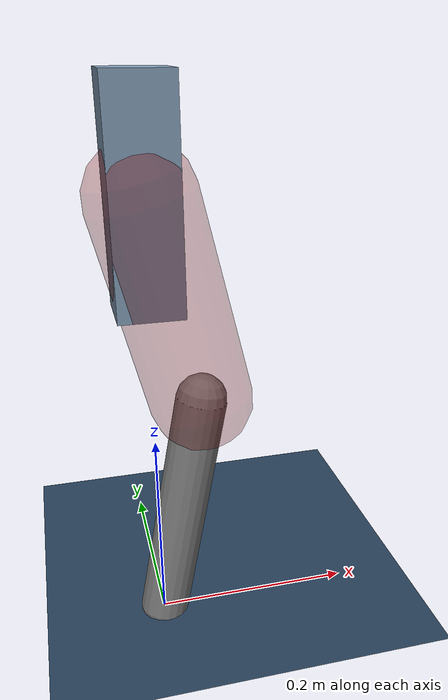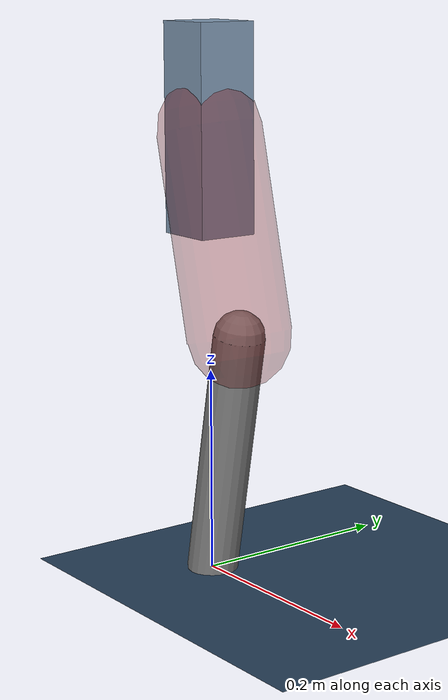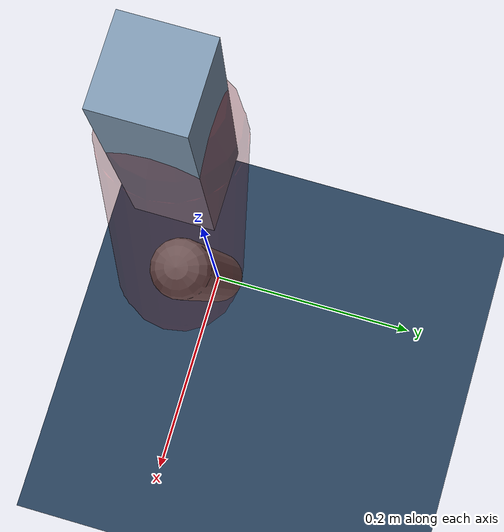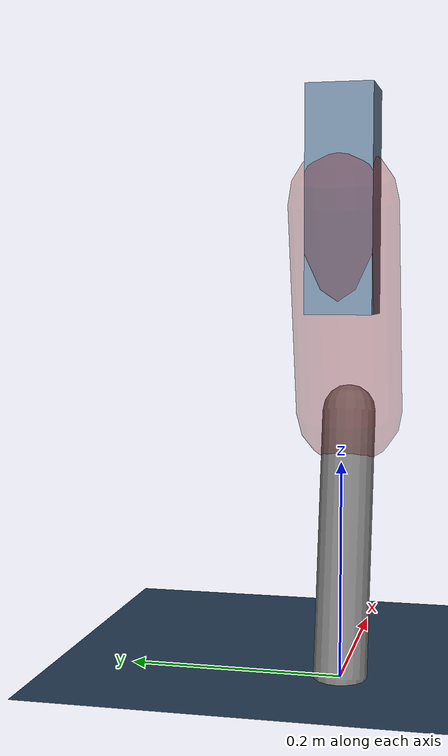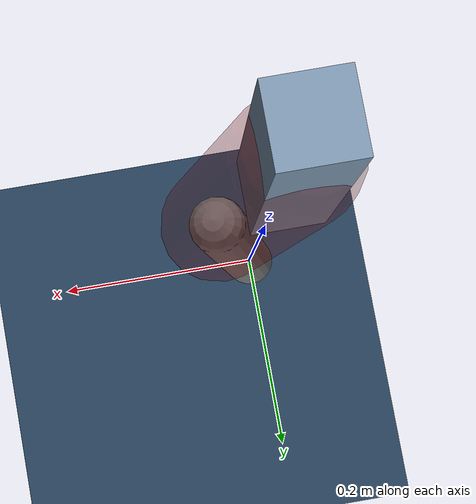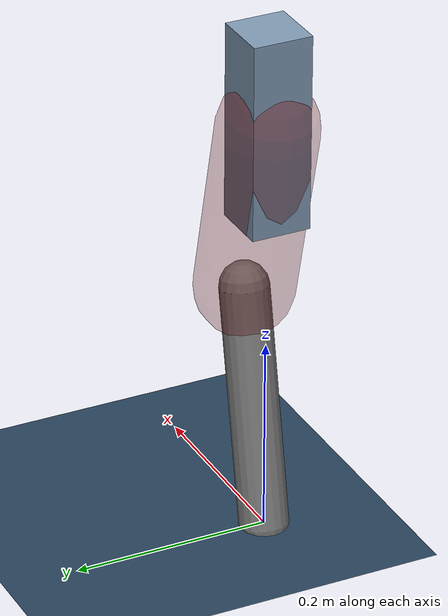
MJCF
<mujoco model="Hopper2D">
	<compiler inertiafromgeom="true" angle="radian" />
	<option timestep="0.001" integrator="implicit" cone="elliptic" solver="Newton" tolerance="1e-10" />

	<default>
		<geom contype="1" conaffinity="1" condim="3" friction="2 0.005 0.0001" solref="0.005 1" />
		<joint limited="true" damping="0.1" />
	</default>

	<asset>
		<texture name="skybox" type="skybox" builtin="gradient" rgb1=".4 .6 .8" rgb2="0 0 0" width="800" height="800" />
		<texture name="grid" type="2d" builtin="checker" rgb1=".1 .2 .3" rgb2=".2 .3 .4" width="300" height="300" mark="edge" markrgb=".2 .3 .4" />
		<material name="ground" texture="grid" texrepeat="1 1" texuniform="true" reflectance="0.1" />
		<material name="leg" rgba="0.5 0.6 0.7 1" />
	</asset>

	<worldbody>

		<geom name="floor" type="plane" size="5 5 0.25" material="ground" />

		<light directional="false" diffuse="0.8 0.8 0.8" specular="0.3 0.3 0.3" pos="0 0 2" dir="0 0 -1" />
		<light mode="targetbodycom" target="base" directional="false" diffuse="0.8 0.8 0.8" specular="0.3 0.3 0.3" pos="0 0 2" dir="0 0 -1" />

		<camera name="fixed" pos="0 -2 1" xyaxes="1 0 0 0 0 1" />
		<camera name="tracking" mode="trackcom" pos="0 -3 1" />

		<body name="root" pos="0 0 0.4346112754985571">
			<joint name="slide_x" type="slide" axis="1 0 0" range="-100 100" />
			<joint name="slide_z" type="slide" axis="0 0 1" range="0 10" />

			<body name="base" pos="0 0 0">
				<geom name="torso" type="box" size="0.03 0.03 0.1" mass="2.88" material="leg" />

				<body name="link1" pos="0 0 0" euler="0 1.3330658330614078 0">
					<joint type="hinge" axis="0 -1 0" pos="0 0 0" name="hinge1" limited="true" range="-3.14 3.14" stiffness="0" damping="0.1" />
					<geom name="thigh" type="capsule" fromto="0 0 0 0.19781398457924998 0 0" size="0.05" rgba="0.5 0 0 0.3" mass="0.7242349614481249" />

					<body name="link2" pos="0.19781398457924998 0 0" euler="0 0.42762670845882783 0">
						<joint type="hinge" axis="0 -1 0" pos="0 0 0" name="hinge2" limited="true" range="-3.14 3.14" stiffness="0" damping="0.1" />
						<geom name="shank" type="capsule" fromto="0 0 0 0.24679729091930713 0 0" size="0.025" mass="0.4399175618273764" />

					</body>
				</body>
			</body>
		</body>
	</worldbody>

	<actuator>
		<motor name="torque1" joint="hinge1" ctrlrange="-18.730993653726916 18.730993653726916" ctrllimited="true" gear="1" />
		<motor name="torque2" joint="hinge2" ctrlrange="-220.10242223764658 220.10242223764658" ctrllimited="true" gear="1" />
	</actuator>
</mujoco>
